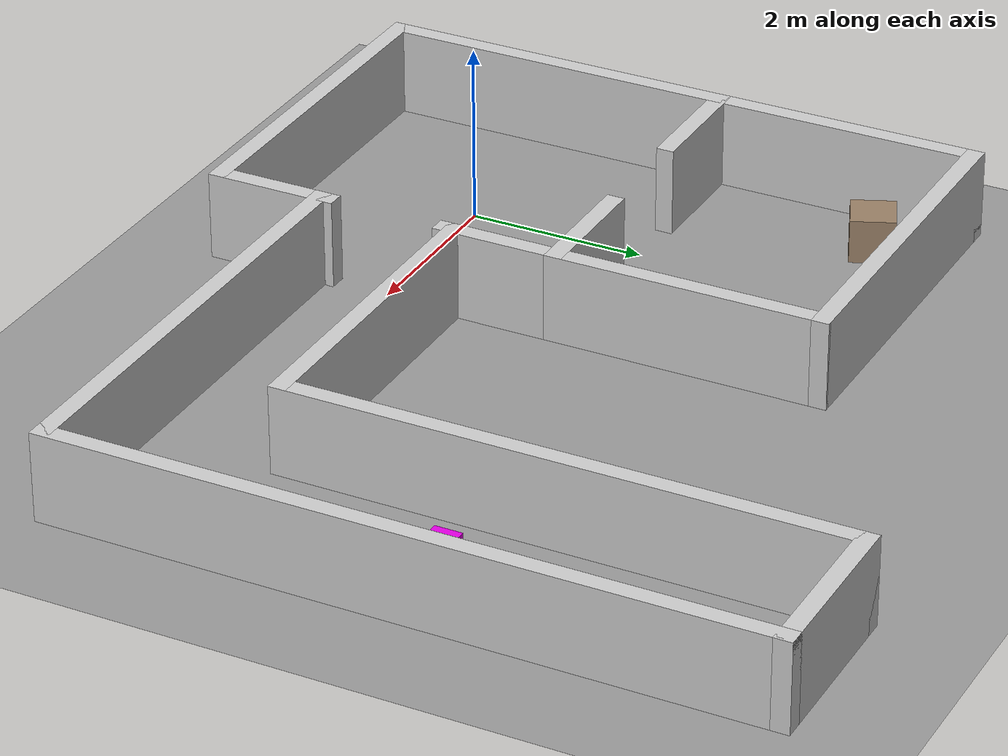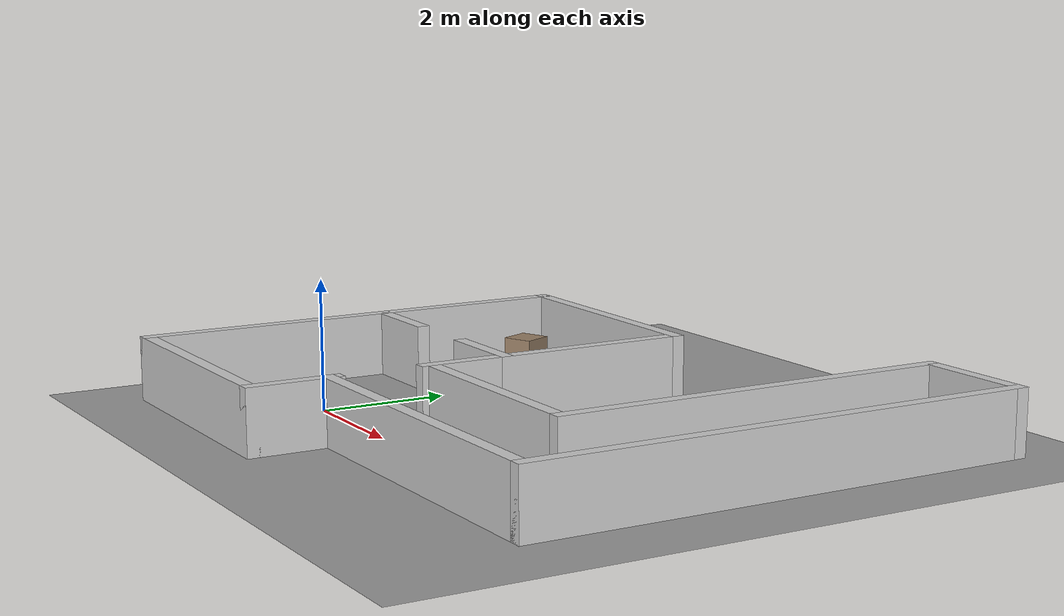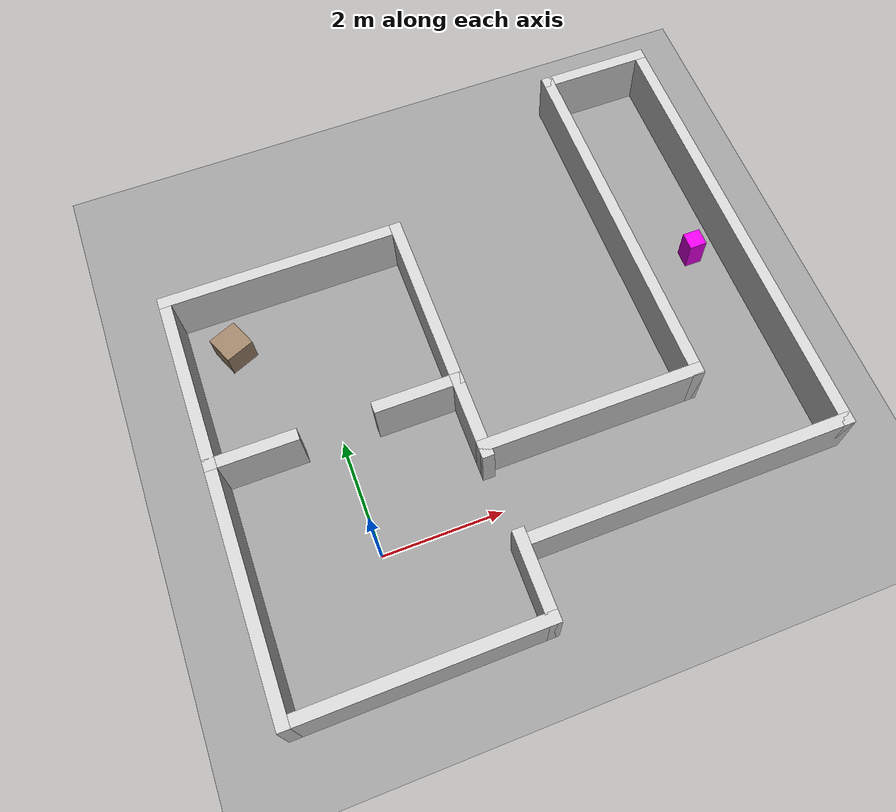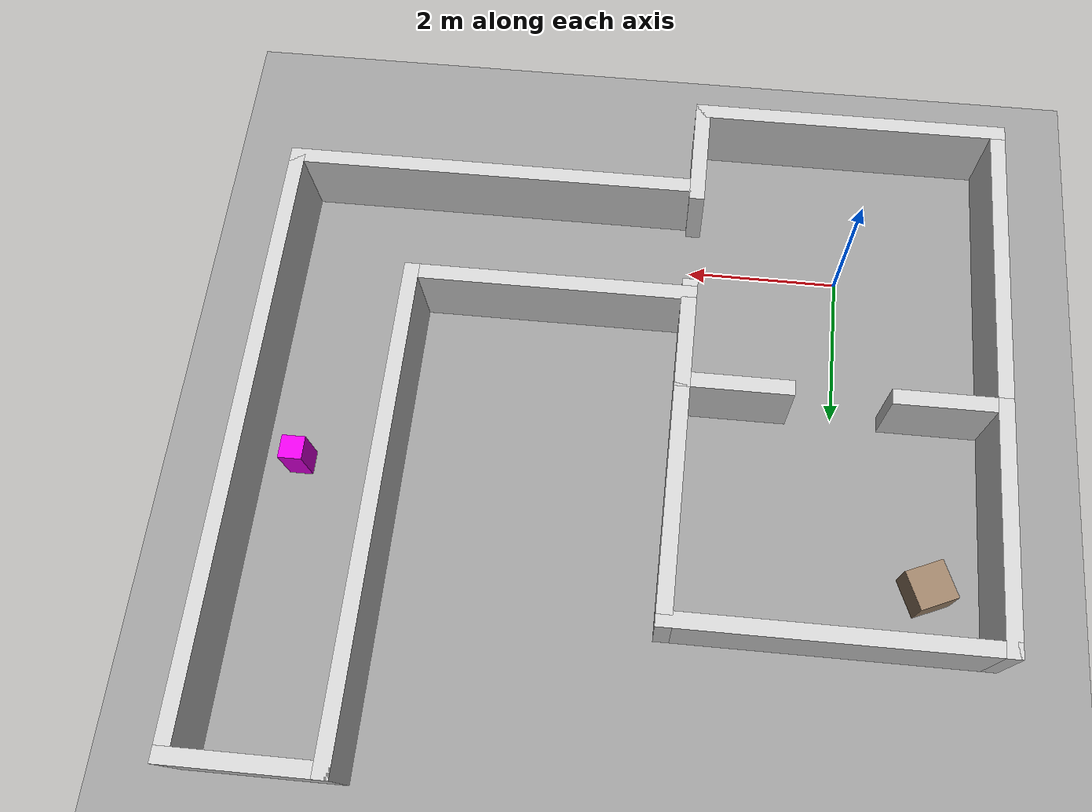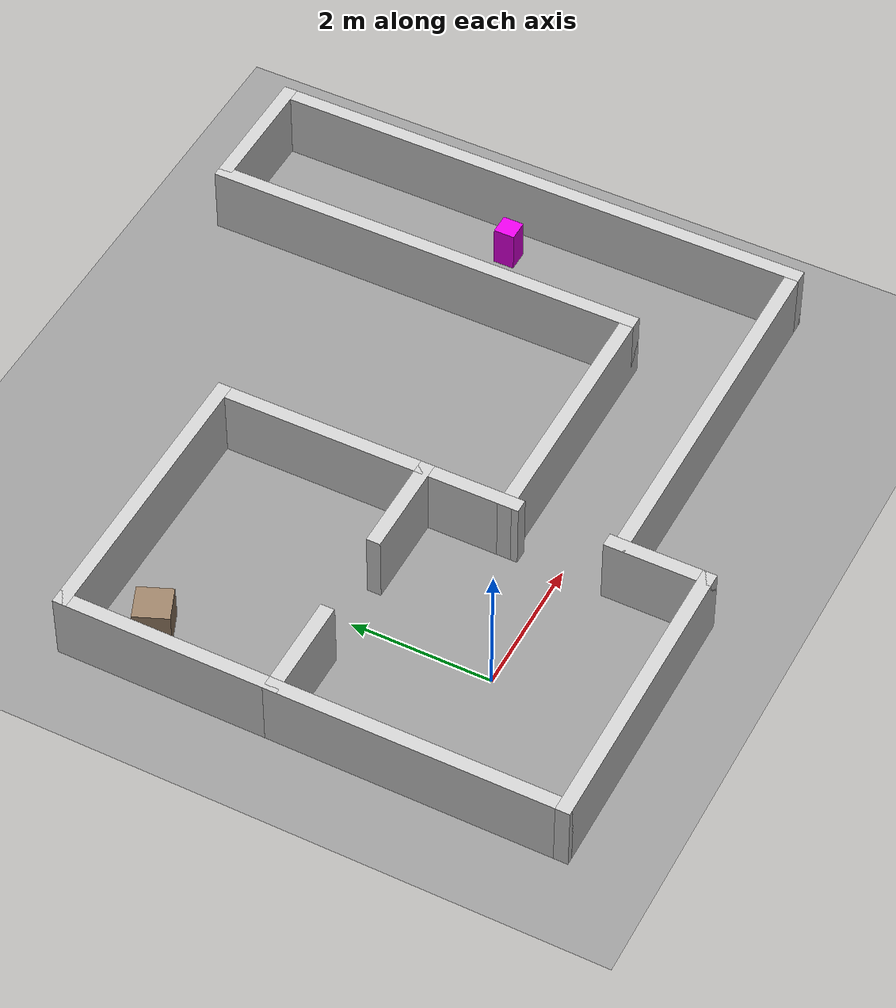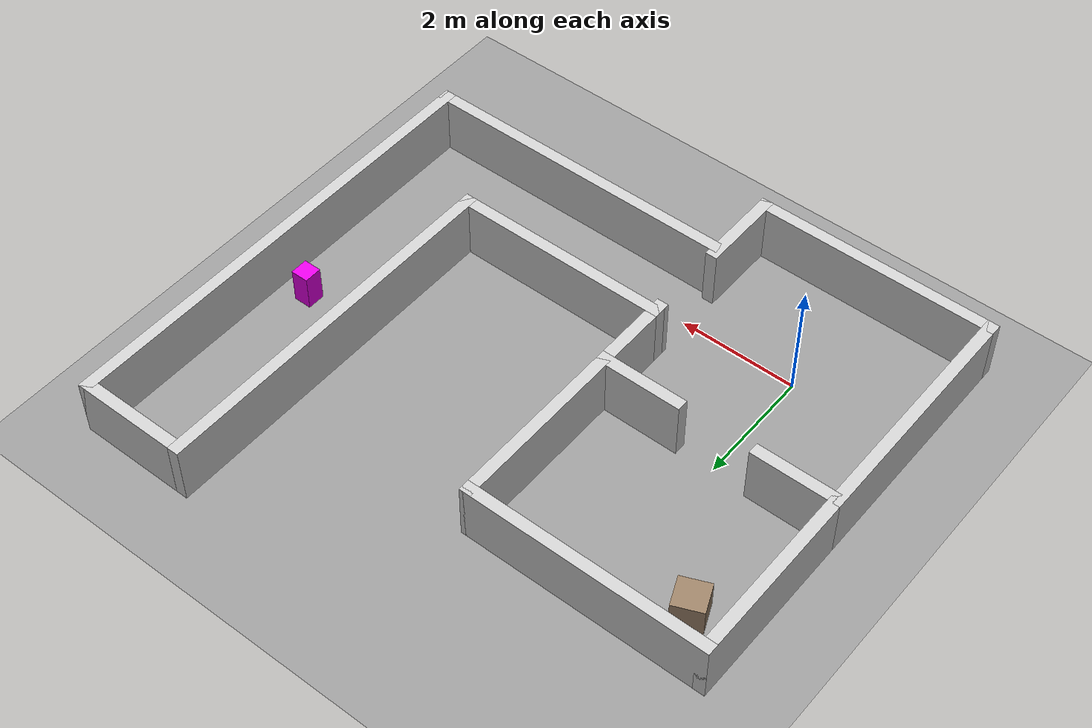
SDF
<?xml version="1.0"?>
<sdf version="1.9">
  <world name="contaminated_zone">

    <plugin filename="gz-sim-physics-system" name="gz::sim::systems::Physics"/>
    <plugin filename="gz-sim-scene-broadcaster-system" name="gz::sim::systems::SceneBroadcaster"/>
    <plugin filename="gz-sim-user-commands-system" name="gz::sim::systems::UserCommands"/>
    <plugin filename="gz-sim-sensors-system" name="gz::sim::systems::Sensors">
      <render_engine>ogre2</render_engine>
    </plugin>
    <plugin filename="gz-sim-imu-system" name="gz::sim::systems::Imu"/>

    <!-- 4 ms step: light on the CPU, smooth inside a VM -->
    <physics name="4ms" type="ignored">
      <max_step_size>0.004</max_step_size>
      <real_time_factor>1.0</real_time_factor>
    </physics>
    <gravity>0 0 -9.81</gravity>

    <light type="directional" name="sun">
      <cast_shadows>false</cast_shadows>
      <pose>0 0 10 0 0 0</pose>
      <diffuse>0.9 0.9 0.9 1</diffuse>
      <specular>0.2 0.2 0.2 1</specular>
      <direction>-0.5 0.3 -1</direction>
    </light>

    <model name="ground_plane">
      <static>true</static>
      <link name="link">
        <collision name="collision">
          <geometry><plane><normal>0 0 1</normal><size>60 60</size></plane></geometry>
          <surface><friction><ode><mu>1.0</mu><mu2>1.0</mu2></ode></friction></surface>
        </collision>
        <visual name="visual">
          <geometry><plane><normal>0 0 1</normal><size>60 60</size></plane></geometry>
          <material><ambient>0.4 0.4 0.4 1</ambient><diffuse>0.6 0.6 0.6 1</diffuse></material>
        </visual>
      </link>
    </model>

    <model name="wall_00">
      <static>true</static><pose>0.000 -2.000 0.500 0 0 0.0000</pose>
      <link name="link">
        <collision name="collision"><geometry><box><size>4.200 0.200 1.000</size></box></geometry></collision>
        <visual name="visual"><geometry><box><size>4.200 0.200 1.000</size></box></geometry>
          <material><ambient>0.7 0.7 0.7 1</ambient><diffuse>0.8 0.8 0.8 1</diffuse></material></visual>
      </link>
    </model>
    <model name="wall_01">
      <static>true</static><pose>-2.000 0.000 0.500 0 0 1.5708</pose>
      <link name="link">
        <collision name="collision"><geometry><box><size>4.200 0.200 1.000</size></box></geometry></collision>
        <visual name="visual"><geometry><box><size>4.200 0.200 1.000</size></box></geometry>
          <material><ambient>0.7 0.7 0.7 1</ambient><diffuse>0.8 0.8 0.8 1</diffuse></material></visual>
      </link>
    </model>
    <model name="wall_02">
      <static>true</static><pose>2.000 -1.350 0.500 0 0 1.5708</pose>
      <link name="link">
        <collision name="collision"><geometry><box><size>1.500 0.200 1.000</size></box></geometry></collision>
        <visual name="visual"><geometry><box><size>1.500 0.200 1.000</size></box></geometry>
          <material><ambient>0.7 0.7 0.7 1</ambient><diffuse>0.8 0.8 0.8 1</diffuse></material></visual>
      </link>
    </model>
    <model name="wall_03">
      <static>true</static><pose>2.000 1.350 0.500 0 0 1.5708</pose>
      <link name="link">
        <collision name="collision"><geometry><box><size>1.500 0.200 1.000</size></box></geometry></collision>
        <visual name="visual"><geometry><box><size>1.500 0.200 1.000</size></box></geometry>
          <material><ambient>0.7 0.7 0.7 1</ambient><diffuse>0.8 0.8 0.8 1</diffuse></material></visual>
      </link>
    </model>
    <model name="wall_04">
      <static>true</static><pose>-1.350 2.000 0.500 0 0 0.0000</pose>
      <link name="link">
        <collision name="collision"><geometry><box><size>1.500 0.200 1.000</size></box></geometry></collision>
        <visual name="visual"><geometry><box><size>1.500 0.200 1.000</size></box></geometry>
          <material><ambient>0.7 0.7 0.7 1</ambient><diffuse>0.8 0.8 0.8 1</diffuse></material></visual>
      </link>
    </model>
    <model name="wall_05">
      <static>true</static><pose>1.350 2.000 0.500 0 0 0.0000</pose>
      <link name="link">
        <collision name="collision"><geometry><box><size>1.500 0.200 1.000</size></box></geometry></collision>
        <visual name="visual"><geometry><box><size>1.500 0.200 1.000</size></box></geometry>
          <material><ambient>0.7 0.7 0.7 1</ambient><diffuse>0.8 0.8 0.8 1</diffuse></material></visual>
      </link>
    </model>
    <model name="wall_06">
      <static>true</static><pose>-2.000 3.500 0.500 0 0 1.5708</pose>
      <link name="link">
        <collision name="collision"><geometry><box><size>3.200 0.200 1.000</size></box></geometry></collision>
        <visual name="visual"><geometry><box><size>3.200 0.200 1.000</size></box></geometry>
          <material><ambient>0.7 0.7 0.7 1</ambient><diffuse>0.8 0.8 0.8 1</diffuse></material></visual>
      </link>
    </model>
    <model name="wall_07">
      <static>true</static><pose>2.000 3.500 0.500 0 0 1.5708</pose>
      <link name="link">
        <collision name="collision"><geometry><box><size>3.200 0.200 1.000</size></box></geometry></collision>
        <visual name="visual"><geometry><box><size>3.200 0.200 1.000</size></box></geometry>
          <material><ambient>0.7 0.7 0.7 1</ambient><diffuse>0.8 0.8 0.8 1</diffuse></material></visual>
      </link>
    </model>
    <model name="wall_08">
      <static>true</static><pose>0.000 5.000 0.500 0 0 0.0000</pose>
      <link name="link">
        <collision name="collision"><geometry><box><size>4.200 0.200 1.000</size></box></geometry></collision>
        <visual name="visual"><geometry><box><size>4.200 0.200 1.000</size></box></geometry>
          <material><ambient>0.7 0.7 0.7 1</ambient><diffuse>0.8 0.8 0.8 1</diffuse></material></visual>
      </link>
    </model>
    <model name="wall_09">
      <static>true</static><pose>4.700 -0.800 0.500 0 0 0.0000</pose>
      <link name="link">
        <collision name="collision"><geometry><box><size>5.600 0.200 1.000</size></box></geometry></collision>
        <visual name="visual"><geometry><box><size>5.600 0.200 1.000</size></box></geometry>
          <material><ambient>0.7 0.7 0.7 1</ambient><diffuse>0.8 0.8 0.8 1</diffuse></material></visual>
      </link>
    </model>
    <model name="wall_10">
      <static>true</static><pose>3.800 0.800 0.500 0 0 0.0000</pose>
      <link name="link">
        <collision name="collision"><geometry><box><size>3.800 0.200 1.000</size></box></geometry></collision>
        <visual name="visual"><geometry><box><size>3.800 0.200 1.000</size></box></geometry>
          <material><ambient>0.7 0.7 0.7 1</ambient><diffuse>0.8 0.8 0.8 1</diffuse></material></visual>
      </link>
    </model>
    <model name="wall_11">
      <static>true</static><pose>5.600 3.900 0.500 0 0 1.5708</pose>
      <link name="link">
        <collision name="collision"><geometry><box><size>6.400 0.200 1.000</size></box></geometry></collision>
        <visual name="visual"><geometry><box><size>6.400 0.200 1.000</size></box></geometry>
          <material><ambient>0.7 0.7 0.7 1</ambient><diffuse>0.8 0.8 0.8 1</diffuse></material></visual>
      </link>
    </model>
    <model name="wall_12">
      <static>true</static><pose>7.400 3.100 0.500 0 0 1.5708</pose>
      <link name="link">
        <collision name="collision"><geometry><box><size>8.000 0.200 1.000</size></box></geometry></collision>
        <visual name="visual"><geometry><box><size>8.000 0.200 1.000</size></box></geometry>
          <material><ambient>0.7 0.7 0.7 1</ambient><diffuse>0.8 0.8 0.8 1</diffuse></material></visual>
      </link>
    </model>
    <model name="wall_13">
      <static>true</static><pose>6.500 7.000 0.500 0 0 0.0000</pose>
      <link name="link">
        <collision name="collision"><geometry><box><size>2.000 0.200 1.000</size></box></geometry></collision>
        <visual name="visual"><geometry><box><size>2.000 0.200 1.000</size></box></geometry>
          <material><ambient>0.7 0.7 0.7 1</ambient><diffuse>0.8 0.8 0.8 1</diffuse></material></visual>
      </link>
    </model>
    <model name="rubble_b">
      <static>true</static><pose>-1.200 4.200 0.250 0 0 0.4000</pose>
      <link name="link">
        <collision name="collision"><geometry><box><size>0.500 0.500 0.500</size></box></geometry></collision>
        <visual name="visual"><geometry><box><size>0.500 0.500 0.500</size></box></geometry>
          <material><ambient>0.5 0.4 0.3 1</ambient><diffuse>0.6 0.5 0.4 1</diffuse></material></visual>
      </link>
    </model>
    <model name="radiation_source">
      <static>true</static><pose>6.800 3.200 0.300 0 0 0.0000</pose>
      <link name="link">
        <collision name="collision"><geometry><box><size>0.300 0.300 0.600</size></box></geometry></collision>
        <visual name="visual"><geometry><box><size>0.300 0.300 0.600</size></box></geometry>
          <material><ambient>0.6 0.0 0.6 1</ambient><diffuse>0.9 0.0 0.9 1</diffuse><emissive>0.3 0.0 0.3 1</emissive></material></visual>
      </link>
    </model>

  </world>
</sdf>
